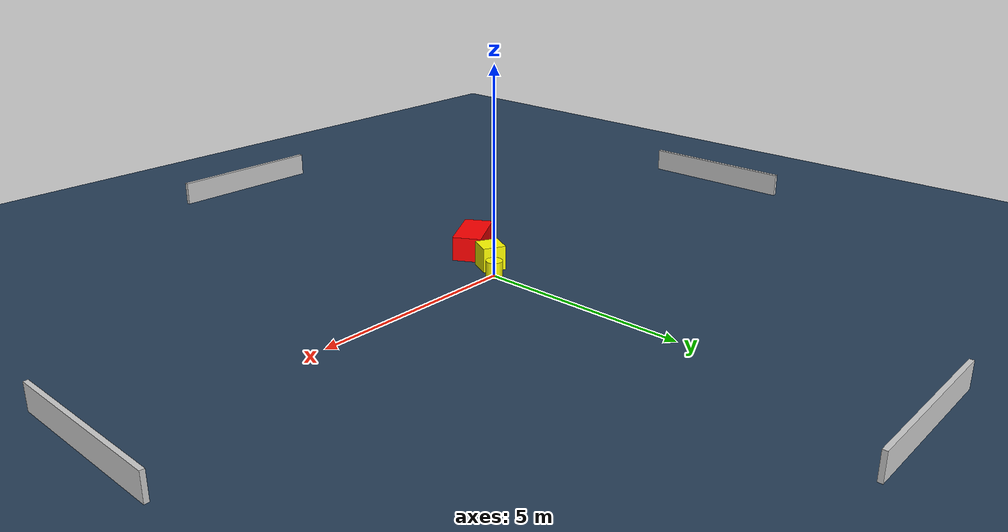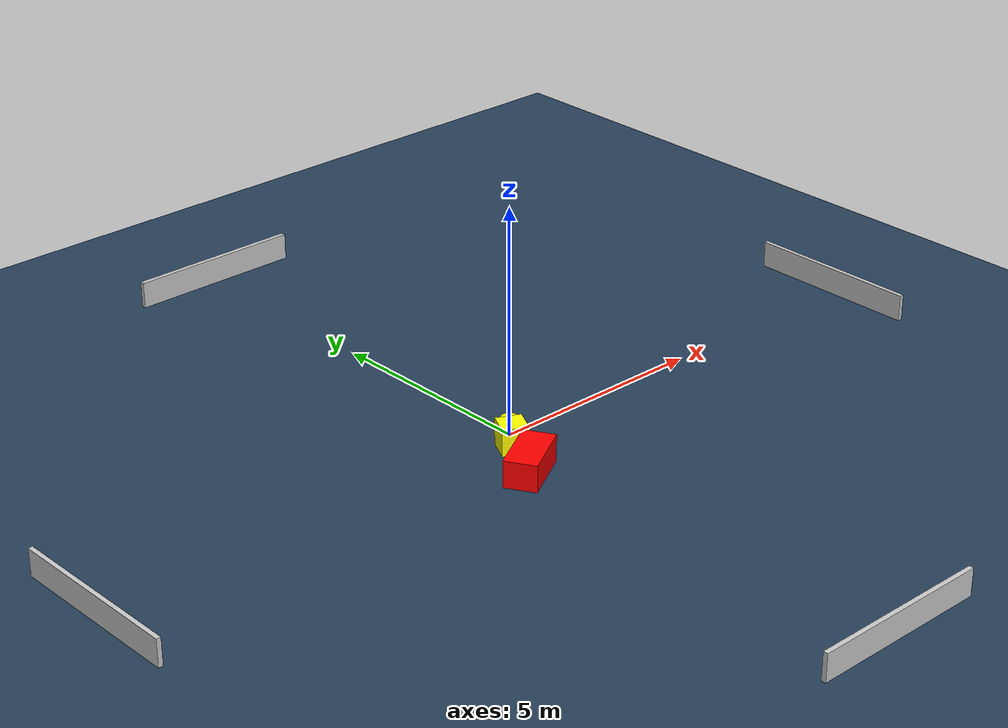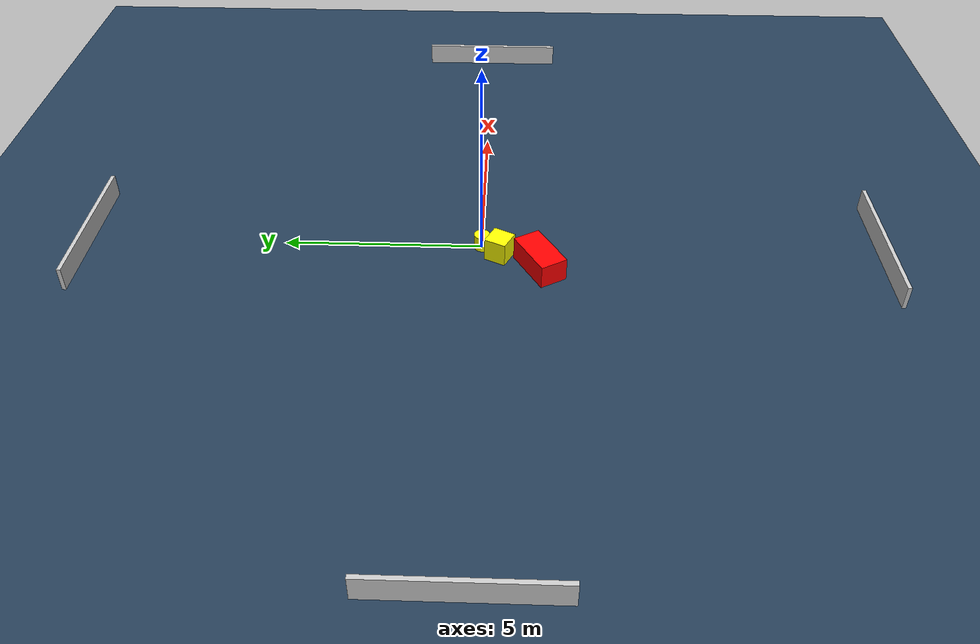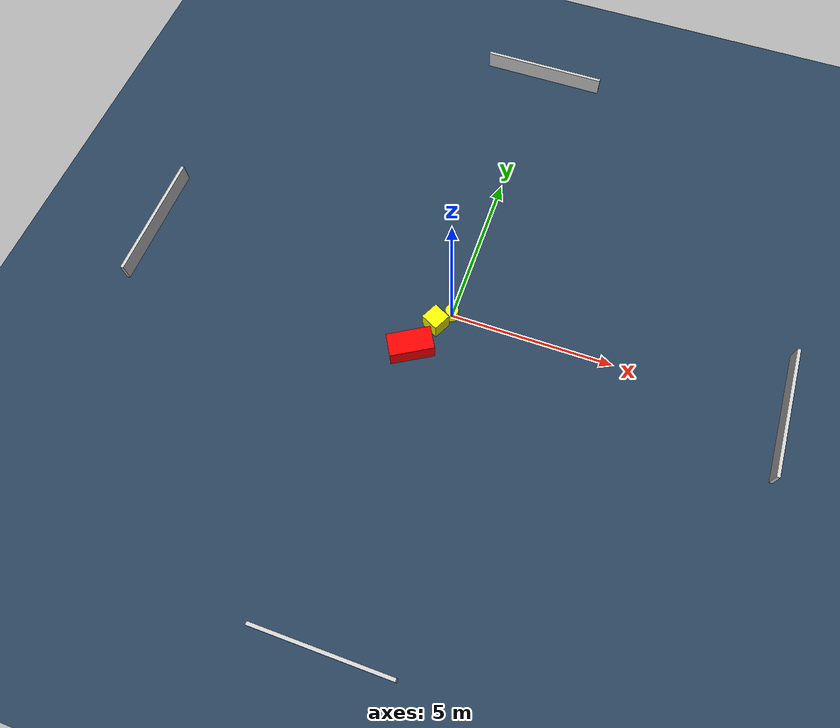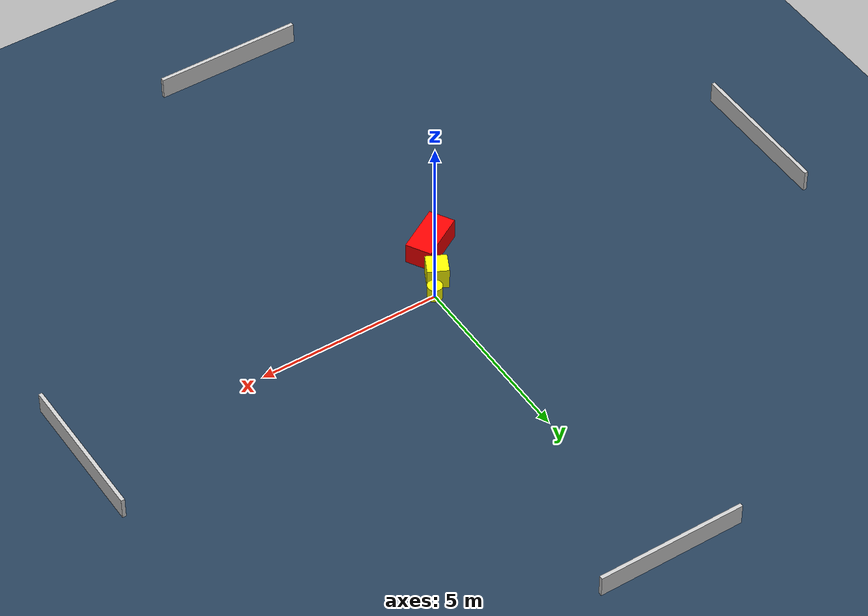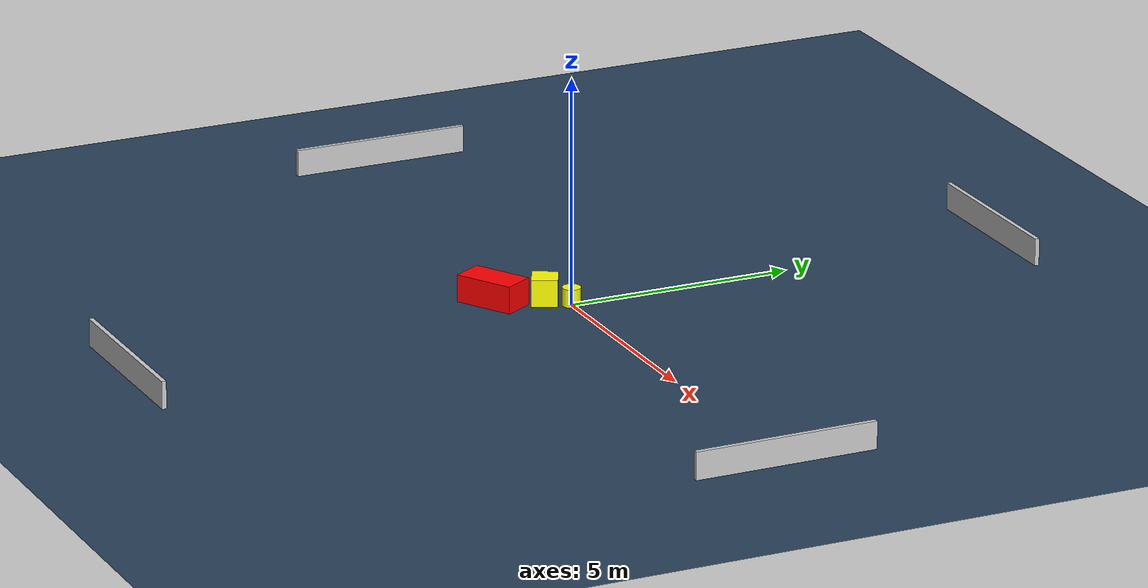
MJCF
<?xml version="1.0" ?>
<mujoco model="generated_environment">
  <option timestep="0.01" integrator="RK4" cone="elliptic"/>
  <default>
    <geom density="1"/>
  </default>
  <asset>
    <texture builtin="gradient" height="3072" name="skybox" rgb1="0.3 0.5 0.7" rgb2="0 0 0" type="skybox" width="512"/>
    <texture builtin="checker" height="300" name="groundplane" rgb1="0.2 0.3 0.4" rgb2="0.1 0.2 0.3" type="2d" width="300"/>
    <material name="groundplane" reflectance="0.2" texrepeat="5 5" texture="groundplane"/>
  </asset>
  <worldbody>
    <light dir="0 0 -1" directional="true" pos="0 0 1.5"/>
    <geom condim="3" friction="0.5 0.005 0.001" material="groundplane" name="floor" pos="0 0 0" size="0 0 0.05" type="plane"/>
    <body name="walls">
      <geom name="wall_1" condim="4" pos="-10.0 0.0 0.3" rgba="0.800000011920929 0.800000011920929 0.800000011920929 1.0" size="0.05 2.0 0.3" type="box"/>
      <geom name="wall_2" condim="4" pos="10.0 0.0 0.3" rgba="0.800000011920929 0.800000011920929 0.800000011920929 1.0" size="0.05 2.0 0.3" type="box"/>
      <geom name="wall_3" condim="4" pos="0.0 -10.0 0.3" rgba="0.800000011920929 0.800000011920929 0.800000011920929 1.0" size="2.0 0.05 0.3" type="box"/>
      <geom name="wall_4" condim="4" pos="0.0 10.0 0.3" rgba="0.800000011920929 0.800000011920929 0.800000011920929 1.0" size="2.0 0.05 0.3" type="box"/>
    </body>
    <body name="robot">
      <joint name="joint_x" type="slide" pos="0 0 0" axis="1 0 0"/>
      <joint name="joint_y" type="slide" pos="0 0 0" axis="0 1 0"/>
      <geom name="robot" type="cylinder" pos="0.0 0.0 0.2" size="0.2 0.2 0.0" mass="5.0" friction="1.0 0.005 0.0001" condim="4" rgba="1.0 1.0 0.0 1.0"/>
    </body>
    <body name="obstacle_1_movable">
      <geom name="obstacle_1_movable" condim="4" pos="-0.3572792303953453 -0.44827525915732486 0.3" euler="0 0 243.51601994972938" friction="0.0 0.005 0.001" rgba="1.0 1.0 0.0 1.0" size="0.28228641252617304 0.2825735030708203 0.3" type="box" mass="0.1"/>
      <joint type="free"/>
    </body>
    <body name="obstacle_2_static">
      <geom name="obstacle_2_static" condim="4" pos="-0.8007942900718771 -1.4429002932885786 0.3" euler="0 0 120.22971964654023" friction="0.0 0.005 0.001" rgba="1.0 0.0 0.0 1.0" size="0.35447684712670535 0.6669283786820105 0.3" type="box"/>
    </body>
  </worldbody>
  <actuator>
    <motor name="actuator_x" joint="joint_x" gear="1" ctrlrange="-1 1"/>
    <motor name="actuator_y" joint="joint_y" gear="1" ctrlrange="-1 1"/>
  </actuator>
</mujoco>
